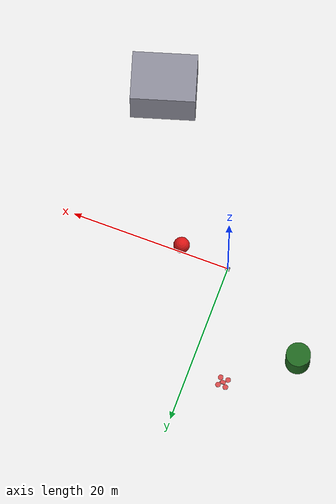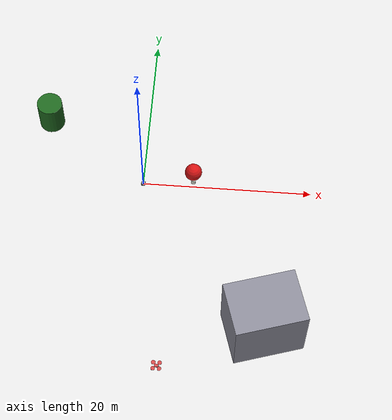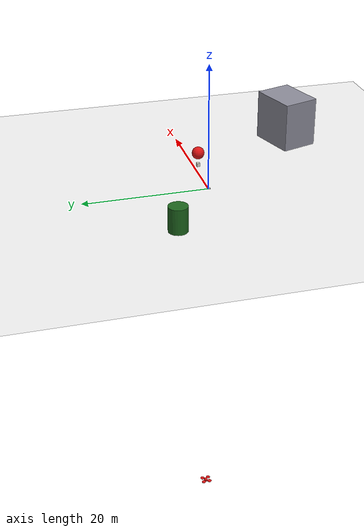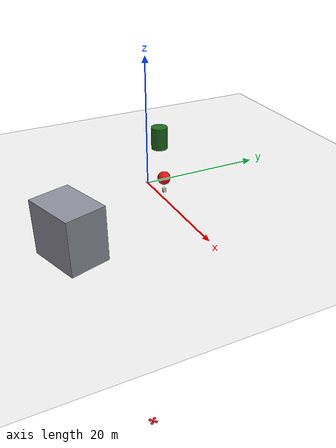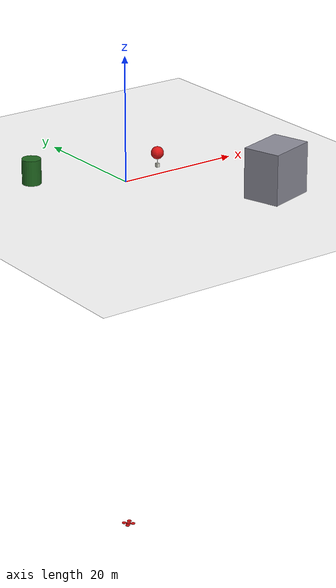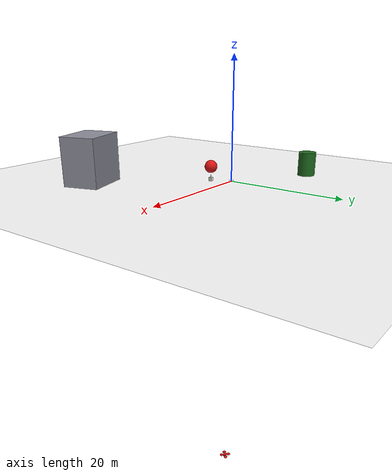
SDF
<?xml version="1.0"?>

<sdf version="1.6">
  <world name="arms">
    <include><uri>model://sun</uri></include>
    <include><uri>model://ground_plane</uri></include>
    <physics type="ode">
      <max_step_size>0.004</max_step_size>
      <real_time_factor>1</real_time_factor>
      <real_time_update_rate>500</real_time_update_rate>
    </physics>
    <scene>
      <ambient>0.55 0.55 0.55 1</ambient>
      <background>0.55 0.72 0.92 1</background>
      <shadows>false</shadows>
      <sky>
        <time>12</time>
        <clouds><speed>4</speed><humidity>0.6</humidity><mean_size>0.6</mean_size></clouds>
      </sky>
    </scene>

    <model name="bg_tree1"><static>true</static><pose>-12 8 2 0 0 0</pose>
      <link name="l"><visual name="v"><geometry><cylinder><radius>1.5</radius><length>4</length></cylinder></geometry>
        <material><ambient>0.1 0.35 0.1 1</ambient><diffuse>0.12 0.4 0.12 1</diffuse></material></visual></link></model>
    <model name="bg_bldg"><static>true</static><pose>15 -18 4 0 0 0.3</pose>
      <link name="l"><visual name="v"><geometry><box><size>8 6 8</size></box></geometry>
        <material><ambient>0.5 0.5 0.55 1</ambient><diffuse>0.55 0.55 0.6 1</diffuse></material></visual></link></model>

    <model name="balloon">
      <pose>6 0 3.5 0 0 0</pose>
      <link name="link">
        <gravity>false</gravity>
        <kinematic>true</kinematic>
        <visual name="v">
          <geometry><sphere><radius>1.0</radius></sphere></geometry>
          <material><ambient>0.7 0.05 0.05 1</ambient><diffuse>0.85 0.08 0.08 1</diffuse>
            <specular>0.3 0.3 0.3 1</specular></material>
        </visual>
        <visual name="bag">
          <pose>0 0 -2.0 0 0 0</pose>
          <geometry><box><size>0.5 0.5 0.6</size></box></geometry>
          <material><ambient>0.85 0.85 0.8 1</ambient><diffuse>0.85 0.85 0.8 1</diffuse></material>
        </visual>
        <visual name="string">
          <pose>0 0 -1.35 0 0 0</pose>
          <geometry><cylinder><radius>0.01</radius><length>0.7</length></cylinder></geometry>
          <material><ambient>0.9 0.9 0.9 1</ambient><diffuse>0.9 0.9 0.9 1</diffuse></material>
        </visual>
      </link>
    </model>

    <model name="drone_tgt">
      <pose>0 0 -60 0 0 0</pose>
      <link name="link">
        <gravity>false</gravity>
        <kinematic>true</kinematic>
        <visual name="body"><geometry><box><size>0.7 0.5 0.3</size></box></geometry>
          <material><ambient>0.7 0.05 0.05 1</ambient><diffuse>0.85 0.08 0.08 1</diffuse></material></visual>
        <visual name="arm1"><pose>0 0 0 0 0 0.785</pose><geometry><box><size>1.5 0.08 0.06</size></box></geometry>
          <material><ambient>0.12 0.12 0.12 1</ambient><diffuse>0.15 0.15 0.15 1</diffuse></material></visual>
        <visual name="arm2"><pose>0 0 0 0 0 -0.785</pose><geometry><box><size>1.5 0.08 0.06</size></box></geometry>
          <material><ambient>0.12 0.12 0.12 1</ambient><diffuse>0.15 0.15 0.15 1</diffuse></material></visual>
        <visual name="r1"><pose>0.53 0.53 0.06 0 0 0</pose><geometry><cylinder><radius>0.36</radius><length>0.05</length></cylinder></geometry>
          <material><ambient>0.7 0.05 0.05 1</ambient><diffuse>0.85 0.08 0.08 1</diffuse></material></visual>
        <visual name="r2"><pose>0.53 -0.53 0.06 0 0 0</pose><geometry><cylinder><radius>0.36</radius><length>0.05</length></cylinder></geometry>
          <material><ambient>0.7 0.05 0.05 1</ambient><diffuse>0.85 0.08 0.08 1</diffuse></material></visual>
        <visual name="r3"><pose>-0.53 0.53 0.06 0 0 0</pose><geometry><cylinder><radius>0.36</radius><length>0.05</length></cylinder></geometry>
          <material><ambient>0.7 0.05 0.05 1</ambient><diffuse>0.85 0.08 0.08 1</diffuse></material></visual>
        <visual name="r4"><pose>-0.53 -0.53 0.06 0 0 0</pose><geometry><cylinder><radius>0.36</radius><length>0.05</length></cylinder></geometry>
          <material><ambient>0.7 0.05 0.05 1</ambient><diffuse>0.85 0.08 0.08 1</diffuse></material></visual>
        <visual name="cam"><pose>0.38 0 -0.12 0 0 0</pose><geometry><sphere><radius>0.09</radius></sphere></geometry>
          <material><ambient>0.1 0.1 0.1 1</ambient></material></visual>
      </link>
    </model>

    <model name="chasecam">
      <pose>-6 0 3 0 0 0</pose>
      <link name="l">
        <gravity>false</gravity>
        <kinematic>true</kinematic>
        <sensor name="chase_cam" type="camera">
          <always_on>true</always_on>
          <update_rate>9</update_rate>
          <camera>
            <horizontal_fov>1.2</horizontal_fov>
            <image><width>300</width><height>400</height><format>R8G8B8</format></image>
            <clip><near>0.1</near><far>300</far></clip>
          </camera>
        </sensor>
      </link>
    </model>

    <model name="interceptor">
      <pose>0 0 0.1 0 0 0</pose>
      <link name="body">
        <gravity>false</gravity>
        <kinematic>true</kinematic>
        <visual name="frame">
          <geometry><box><size>0.5 0.5 0.1</size></box></geometry>
          <material><ambient>0.15 0.15 0.15 1</ambient><diffuse>0.2 0.2 0.2 1</diffuse></material>
        </visual>
        <visual name="arm1"><pose>0 0 0 0 0 0.785</pose>
          <geometry><box><size>0.45 0.03 0.02</size></box></geometry>
          <material><ambient>0.1 0.1 0.1 1</ambient></material></visual>
        <visual name="arm2"><pose>0 0 0 0 0 -0.785</pose>
          <geometry><box><size>0.45 0.03 0.02</size></box></geometry>
          <material><ambient>0.1 0.1 0.1 1</ambient></material></visual>
        <visual name="nose"><pose>0.14 0 0 0 0 0</pose>
          <geometry><box><size>0.05 0.06 0.05</size></box></geometry>
          <material><ambient>0.95 0.55 0.05 1</ambient><diffuse>0.95 0.55 0.05 1</diffuse></material></visual>
        <sensor name="cam" type="camera">
          <pose>0.16 0 0.02 0 -0.349 0</pose>
          <always_on>true</always_on>
          <update_rate>9</update_rate>
          <camera>
            <horizontal_fov>1.0856</horizontal_fov>
            <image><width>160</width><height>120</height><format>R8G8B8</format></image>
            <clip><near>0.05</near><far>300</far></clip>
            <noise><type>gaussian</type><mean>0</mean><stddev>0.01</stddev></noise>
          </camera>
        </sensor>
      </link>
      <plugin name="arms_bridge" filename="libarms_bridge.so">
        <camera>cam</camera>
        <balloon>balloon</balloon>
        <max_angle_deg>35</max_angle_deg>
        <full_stick_rate_dps>400</full_stick_rate_dps>
        <hover_thr>0.5</hover_thr>
        <hit_radius>1.2</hit_radius>
      </plugin>
    </model>
  </world>
</sdf>
